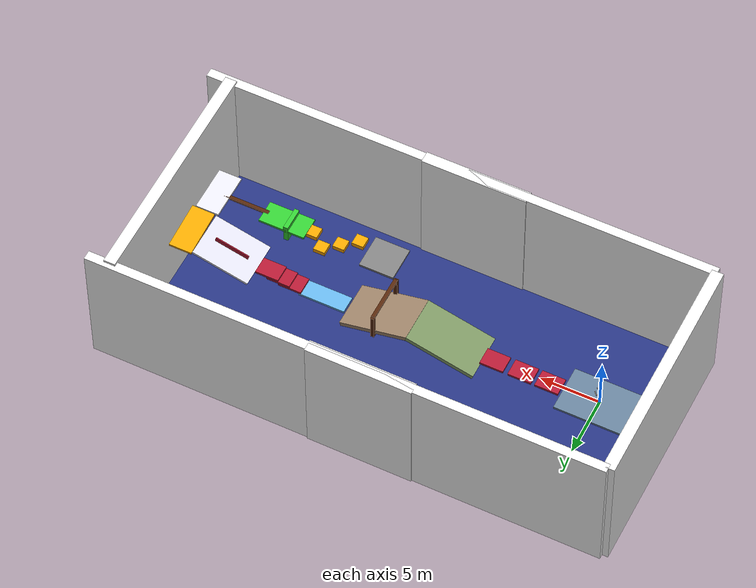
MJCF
<mujoco model="parkour-track">
    <compiler angle="degree" inertiafromgeom="true"/>
    <default>
        <joint armature="1" damping="1" limited="true"/>
        <geom conaffinity="1" condim="1" contype="1" margin="0.001" material="geom"/> <!-- rgba="0.8 0.6 .4 1" -->
        <motor ctrllimited="true" ctrlrange="-.4 .4"/>
    </default>
    <option integrator="RK4" iterations="50" solver="PGS" timestep="0.003" />
    <size nkey="5" nuser_geom="1"/>

    <asset>
        <texture type="skybox" builtin="gradient" rgb1=".4 .6 .8" rgb2="0 0 0" width="800" height="800"/>
        <texture name="grid" type="2d" builtin="checker" rgb1="0 0 0" rgb2="1 1 1" width="300" height="300"/>
        <material name="grid" texture="grid" texrepeat="1 1" texuniform="true" reflectance=".75"/>

        <texture name="shirt_texture" type="2d" file="./assets/shirtPattern.png"/>
        <material name="material_shirt" texture="shirt_texture" specular="0.3" shininess="0.5" texrepeat="0.5 0.5"/>

        <texture name="trunks_texture" type="2d" file="./assets/shorts.png"/>
        <material name="material_trunks" texture="trunks_texture" specular="0.3" shininess="0.5" texrepeat="2 2"/>

        <texture name="lucas_head_texture" type="2d" file="./assets/lucas.png"/>
        <material name="lucas_material" texture="lucas_head_texture" specular="0.3" shininess="0.5" texrepeat="1 1"/>

        <texture name="skin_texture" type="2d" file="./assets/skintone.png"/>
        <material name="material_skin" texture="skin_texture" specular="0.3" shininess="0.5" texrepeat="1 1"/>

        <texture name="SimulatedWood" type="cube" builtin="gradient" width="128" height="128" rgb1="0.6 0.4 0.2" rgb2="0.35 0.2 0.1"/>
        <material name="Wood" texture="SimulatedWood" texrepeat="5 5" emission="0.1" specular="0.2" shininess="0.3" rgba="0.7 0.5 0.3 1"/>

        <texture name="ConcreteTex" type="2d" builtin="flat" width="300" height="300" rgb1="0.4 0.4 0.4" rgb2="0.5 0.5 0.5" random="0.03"/>
        <material name="Concrete" texture="ConcreteTex" texrepeat="1 1" specular="0.1" shininess="0.1"/>

        <texture name="MetalTex" type="cube" builtin="flat" width="128" height="128" rgb1="0.9 0.9 0.95" rgb2="0.9 0.9 0.95"/>
        <material name="Metal" texture="MetalTex" specular="0.1" shininess="0.1" reflectance="0.1"/>

        <material name="geom" rgba="0.8 0.6 .4 1"/>
        <texture name="WallPanelTex" type="cube" builtin="checker" rgb1="1 1 1" rgb2="1 1 1" width="300" height="300" mark="edge" markrgb="0.1 0.1 0.1"/>
        <material name="WallPanelMat" texture="WallPanelTex" texrepeat="15 15" texuniform="true" specular="0.1" shininess="0.1" />
        <texture name="WallPanelTex2" type="2d" builtin="checker" rgb1="1 1 1" rgb2="1 1 1" width="300" height="300" mark="edge" markrgb="0.1 0.1 0.1"/>
        <material name="WallPanelMat2" texture="WallPanelTex2" texrepeat="1 1" texuniform="true" specular="0.1" shininess="0.1" />
        <texture name="PlatformTex" type="2d" builtin="checker" rgb1="0.15 0.2 0.5" rgb2="0.15 0.2 0.5" width="300" height="300" mark="edge" markrgb="1 1 1"/>
        <material name="PlatformMat" texture="PlatformTex" texrepeat="1 1" texuniform="true" specular="0.1" shininess="0.1" />
    </asset>

    <worldbody>
        <light pos="0 0 5" dir="0 0 -1" diffuse="1 1 1" specular="0.1 0.1 0.1" castshadow="true"/>

        <!-- Start Platform -->
        <geom name="platform_start" group="1" condim="3" friction="1 .1 .1" type="box" size="3 2 0.1" pos="0 0 -0.05" rgba="0.4 0.5 0.6 1" material="Concrete"/>

        <geom name="platform_jump_1" group="1" condim="3" type="box" size="1 0.75 0.1" pos="4.2 0 -0.1" rgba="0.7 0.1 0.2 1" friction="1 .1 .1"/>

        <geom name="platform_jump_2" group="1" condim="3" type="box" size="1 0.75 0.1" pos="6.5 0 -0.1" rgba="0.7 0.1 0.2 1" friction="1 .1 .1"/>

        <geom name="platform_jump_3" group="1" condim="3" type="box" size="1 0.75 0.1" pos="8.9 0 -0.1" rgba="0.7 0.1 0.2 1" friction="1 .1 .1"/>

        <!-- Gap 2 (Medium) -->
        <geom name="platform_incline" group="1" condim="3" type="box" size="3 2 0.2" pos="12.8 0 0.3" euler="0 -15 0" material="Concrete" rgba="0.5 0.6 0.4 1" friction="1 .1 .1"/>

        <!-- Gap 3 (Large with Z difference) -->
        <geom name="platform_decline" group="1" condim="3" type="box" size="3 2 0.2" pos="18.5 0 0.3" euler="0 15 0" rgba="0.6 0.5 0.4 1" friction="0.75 .1 .1"/>
        <geom name="duck_beam" type="box" size="0.15 2 0.1" pos="18.5 0 2.2" material="Wood"/>
        <geom name="beam_holder_1" type="box" size="0.15 0.15 1.2" pos="18.5 2 1" material="Wood"/>
        <geom name="beam_holder_2" type="box" size="0.15 0.15 1.2" pos="18.5 -2 1" material="Wood"/>

        <geom name="platform_landing" group="1" condim="3" type="box" size="2 0.75 0.1" pos="23.7 0 -0.7" rgba="0.4 0.7 0.9 1" friction="1 .1 .1"/>

        <geom name="platform_stair" group="1" condim="3" type="box" size="1 0.75 0.1" pos="26.5 0 -0.5" rgba="0.7 0.1 0.2 1" friction="1 .1 .1"/>

        <geom name="platform_stair_2" group="1" condim="3" type="box" size="1 0.75 0.1" pos="27.5 0 -0.3" rgba="0.7 0.1 0.2 1" friction="1 .1 .1"/>

        <geom name="platform_stair_3" group="1" condim="3" type="box" size="1 0.75 0.1" pos="28.5 0 -0.1" rgba="0.7 0.1 0.2 1" friction="1 .1 .1"/>

        <!-- Ramp and High Platform -->
        <geom name="ramp" type="box" group="1" condim="3" size="2.5 2 0.1" pos="32 0 0.4" euler="0 -15 0" material="Metal" friction="1 .1 .1"/> <!-- SLIPPERY?? -->
        <geom name="ramp_rail" type="box" size="1.5 0.05 0.5" pos="32 0 0.4" euler="0 -15 0" rgba="0.7 0.1 0.2 1"/>

        <geom name="high_platform" group="1" condim="3" type="box" size="2 2 0.1" pos="36.5 0 1" rgba="1 0.647 0 1" euler="-5 0 0" friction="1 .1 .1"/>
        <geom name="high_platform2" group="1" condim="3" type="box" size="2 2 0.1" pos="36.5 -4.5 0.5" material="Metal" friction="1 .1 .1"/>

        <!-- The Balance Beam -->
        <geom name="balance_beam" group="1" condim="3" type="box" size="2 0.15 0.1" pos="33 -4.5 0.5" material="Wood" friction="1 .1 .1"/>

        <!-- The Wall Vault -->
        <geom name="vault_wall_platform" group="1" condim="3" type="box" size="2 1 0.1" pos="29.4 -4.5 0.45" rgba="0.2 0.8 0.2 1" friction="1 .1 .1"/>
        <geom name="vault_wall" group="1" condim="3" type="box" size="0.2 1 0.8" pos="29 -4.5 0.15" rgba="0.2 0.8 0.2 1" friction="1 .1 .1"/>

        <!-- The Quad Jumps -->
        <geom name="jump_1" group="1" condim="3" type="box" size="0.5 0.5 0.2" pos="27 -4.5 0.3" rgba="1 0.647 0 1" friction="1 .1 .1"/>
        <geom name="jump_2" group="1" condim="3" type="box" size="0.5 0.5 0.2" pos="25.8 -3.5 0.2" rgba="1 0.647 0 1" friction="1 .1 .1"/>
        <geom name="jump_3" group="1" condim="3" type="box" size="0.5 0.5 0.2" pos="24.6 -4.5 0.1" rgba="1 0.647 0 1" friction="1 .1 .1"/>
        <geom name="jump_4" group="1" condim="3" type="box" size="0.5 0.5 0.2" pos="23.4 -5.5 0" rgba="1 0.647 0 1" friction="1 .1 .1"/>

        <!-- The Final Leap -->
        <geom name="finish_platform" group="1" condim="3" type="box" size="1.5 1.5 0.1" pos="21 -5 -0.1" material="grid" friction="1 .1 .1"/>

        <!-- ARENA BOX -->
        <geom name="bottom_floor" type="box" size="22 10 0.2" pos="17 0 -4" material="PlatformMat" />
        <geom name="wall_leftA" type="box" size="22 6 0.4" pos="17 -10 1.8" euler="90 0 0" material="WallPanelMat2" />
        <geom name="wall_left" type="box" size="4.5 0.5 6" pos="15.5 -10 1.8" material="WallPanelMat" />
        <geom name="wall_rightA" type="box" size="22 6 0.4" pos="17 10 1.8" euler="90 0 0" material="WallPanelMat2" />
        <geom name="wall_right" type="box" size="4.5 0.5 6" pos="15.5 10 1.8" material="WallPanelMat" />
        <geom name="wall_back" type="box" size="0.5 10 6" pos="-5 0 1.8" material="WallPanelMat" />
        <geom name="wall_front" type="box" size="0.5 10 6" pos="37 0 2" material="WallPanelMat" />

        <!-- Manually Expanded Ray visualization geoms -->
        <body name="ray_viz_parent" pos="0 0 0">
            <geom name="ray_viz_0" type="capsule" size="0.01 0.1" pos="0 0 -10" rgba="1 0 0 0.5" contype="0" conaffinity="0"/>
            <geom name="ray_viz_1" type="capsule" size="0.01 0.1" pos="0 0 -10" rgba="1 0 0 0.5" contype="0" conaffinity="0"/>
            <geom name="ray_viz_2" type="capsule" size="0.01 0.1" pos="0 0 -10" rgba="1 0 0 0.5" contype="0" conaffinity="0"/>
            <geom name="ray_viz_3" type="capsule" size="0.01 0.1" pos="0 0 -10" rgba="1 0 0 0.5" contype="0" conaffinity="0"/>
            <geom name="ray_viz_4" type="capsule" size="0.01 0.1" pos="0 0 -10" rgba="1 0 0 0.5" contype="0" conaffinity="0"/>
            <geom name="ray_viz_5" type="capsule" size="0.01 0.1" pos="0 0 -10" rgba="1 0 0 0.5" contype="0" conaffinity="0"/>
            <geom name="ray_viz_6" type="capsule" size="0.01 0.1" pos="0 0 -10" rgba="1 0 0 0.5" contype="0" conaffinity="0"/>
            <geom name="ray_viz_7" type="capsule" size="0.01 0.1" pos="0 0 -10" rgba="1 0 0 0.5" contype="0" conaffinity="0"/>
            <geom name="ray_viz_8" type="capsule" size="0.01 0.1" pos="0 0 -10" rgba="1 0 0 0.5" contype="0" conaffinity="0"/>
            <geom name="ray_viz_9" type="capsule" size="0.01 0.1" pos="0 0 -10" rgba="1 0 0 0.5" contype="0" conaffinity="0"/>
        </body>

        <site name="target_marker" type="sphere" size="0.15" rgba="0 1 1 0.7" />
        <site name="target_marker_next" type="sphere" size="0.15" rgba="0 1 1 0.3" />

        <body name="torso" pos="0 0 1.4">
            <camera name="side_view2" mode="trackcom" pos="1 -3 0.5" xyaxes="1 0 0 0 0.4 0.9"/>
            <camera name="chase_view_backward" mode="trackcom" pos="2.5 0 0.25" xyaxes="0 1 0 -0.342 0 0.940"/>
            <camera name="side_view1" mode="trackcom" pos="1 3 0.5" xyaxes="-1 0 0 0 -0.4 0.9"/>
            <camera name="third_person_follower" mode="trackcom" pos="-3 0 0.5" xyaxes="0 -1 0 0.342 0 0.940"/>
            <joint armature="0" damping="0" limited="false" name="root" pos="0 0 0" stiffness="0" type="free"/>
            <geom fromto="0 -.07 0 0 .07 0" name="torso1" size="0.07" type="capsule" material="material_shirt"/>
            <geom name="head" pos="0 0 .19" size=".09" type="sphere" material="lucas_material" quat="0.707 0 0.507 0" />
            <geom fromto="-.01 -.06 -.12 -.01 .06 -.12" name="uwaist" size="0.06" type="capsule" material="material_shirt"/>

            <body name="lwaist" pos="-.01 0 -0.260" quat="1.000 0 -0.002 0">
                <geom fromto="0 -.06 0 0 .06 0" name="lwaist" size="0.06" type="capsule" material="material_shirt"/>
                <joint armature="0.02" axis="0 0 1" damping="5" name="abdomen_z" pos="0 0 0.065" range="-45 45" stiffness="20" type="hinge"/>
                <joint armature="0.02" axis="0 1 0" damping="5" name="abdomen_y" pos="0 0 0.065" range="-75 30" stiffness="10" type="hinge"/>
                <body name="pelvis" pos="0 0 -0.165" quat="1.000 0 -0.002 0">
                    <joint armature="0.02" axis="1 0 0" damping="5" name="abdomen_x" pos="0 0 0.1" range="-35 35" stiffness="10" type="hinge"/>
                    <geom fromto="-.02 -.07 0 -.02 .07 0" name="butt" size="0.09" type="capsule" material="material_trunks"/>
                    <body name="right_thigh" pos="0 -0.1 -0.04">
                        <joint armature="0.01" axis="1 0 0" damping="5" name="right_hip_x" pos="0 0 0" range="-25 5" stiffness="10" type="hinge"/>
                        <joint armature="0.01" axis="0 0 1" damping="5" name="right_hip_z" pos="0 0 0" range="-60 35" stiffness="10" type="hinge"/>
                        <joint armature="0.0080" axis="0 1 0" damping="5" name="right_hip_y" pos="0 0 0" range="-110 20" stiffness="20" type="hinge"/>
                        <geom fromto="0 0 0 0 0.01 -.34" name="right_thigh1" size="0.06" type="capsule" material="material_skin"/>
                        <body name="right_shin" pos="0 0.01 -0.403">
                            <joint armature="0.0060" axis="0 -1 0" name="right_knee" pos="0 0 .02" range="-160 -2" type="hinge"/>
                            <geom fromto="0 0 0 0 0 -.3" name="right_shin1" size="0.049" type="capsule" material="material_skin"/>
                            <body name="right_foot" pos="0 0 -0.45">
                                <geom name="right_foot" pos="0 0 0.1" size="0.075" type="sphere" user="0" material="material_skin"/>
                            </body>
                        </body>
                    </body>
                    <body name="left_thigh" pos="0 0.1 -0.04">
                        <joint armature="0.01" axis="-1 0 0" damping="5" name="left_hip_x" pos="0 0 0" range="-25 5" stiffness="10" type="hinge"/>
                        <joint armature="0.01" axis="0 0 -1" damping="5" name="left_hip_z" pos="0 0 0" range="-60 35" stiffness="10" type="hinge"/>
                        <joint armature="0.01" axis="0 1 0" damping="5" name="left_hip_y" pos="0 0 0" range="-110 20" stiffness="20" type="hinge"/>
                        <geom fromto="0 0 0 0 -0.01 -.34" name="left_thigh1" size="0.06" type="capsule" material="material_skin"/>
                        <body name="left_shin" pos="0 -0.01 -0.403">
                            <joint armature="0.0060" axis="0 -1 0" name="left_knee" pos="0 0 .02" range="-160 -2" stiffness="1" type="hinge"/>
                            <geom fromto="0 0 0 0 0 -.3" name="left_shin1" size="0.049" type="capsule" material="material_skin"/>
                            <body name="left_foot" pos="0 0 -0.45">
                                <geom name="left_foot" type="sphere" size="0.075" pos="0 0 0.1" user="0" material="material_skin"/>
                            </body>
                        </body>
                    </body>
                </body>
            </body>
            <body name="right_upper_arm" pos="0 -0.17 0.06">
                <joint armature="0.0068" axis="2 1 1" name="right_shoulder1" pos="0 0 0" range="-85 60" stiffness="1" type="hinge"/>
                <joint armature="0.0051" axis="0 -1 1" name="right_shoulder2" pos="0 0 0" range="-85 60" stiffness="1" type="hinge"/>
                <geom fromto="0 0 0 .16 -.16 -.16" name="right_uarm1" size="0.04 0.16" type="capsule" material="material_skin"/>
                <body name="right_lower_arm" pos=".18 -.18 -.18">
                    <joint armature="0.0028" axis="0 -1 1" name="right_elbow" pos="0 0 0" range="-90 50" stiffness="0" type="hinge"/>
                    <geom fromto="0.01 0.01 0.01 .17 .17 .17" name="right_larm" size="0.031" type="capsule" material="material_skin"/>
                    <geom name="right_hand" pos=".18 .18 .18" size="0.04" type="sphere" material="material_skin"/>
                </body>
            </body>
            <body name="left_upper_arm" pos="0 0.17 0.06">
                <joint armature="0.0068" axis="2 -1 1" name="left_shoulder1" pos="0 0 0" range="-60 85" stiffness="1" type="hinge"/>
                <joint armature="0.0051" axis="0 1 1" name="left_shoulder2" pos="0 0 0" range="-60 85" stiffness="1" type="hinge"/>
                <geom fromto="0 0 0 .16 .16 -.16" name="left_uarm1" size="0.04 0.16" type="capsule" material="material_skin"/>
                <body name="left_lower_arm" pos=".18 .18 -.18">
                    <joint armature="0.0028" axis="0 -1 -1" name="left_elbow" pos="0 0 0" range="-90 50" stiffness="0" type="hinge"/>
                    <geom fromto="0.01 -0.01 0.01 .17 -.17 .17" name="left_larm" size="0.031" type="capsule" material="material_skin"/>
                    <geom name="left_hand" pos=".18 -.18 .18" size="0.04" type="sphere" material="material_skin"/>
                </body>
            </body>
        </body>
    </worldbody>
    <tendon>
        <fixed name="left_hipknee">
            <joint coef="-1" joint="left_hip_y"/>
            <joint coef="1" joint="left_knee"/>
        </fixed>
        <fixed name="right_hipknee">
            <joint coef="-1" joint="right_hip_y"/>
            <joint coef="1" joint="right_knee"/>
        </fixed>
    </tendon>

    <actuator>
        <motor gear="100" joint="abdomen_y" name="abdomen_y"/>
        <motor gear="100" joint="abdomen_z" name="abdomen_z"/>
        <motor gear="100" joint="abdomen_x" name="abdomen_x"/>
        <motor gear="100" joint="right_hip_x" name="right_hip_x"/>
        <motor gear="100" joint="right_hip_z" name="right_hip_z"/>
        <motor gear="300" joint="right_hip_y" name="right_hip_y"/>
        <motor gear="200" joint="right_knee" name="right_knee"/>
        <motor gear="100" joint="left_hip_x" name="left_hip_x"/>
        <motor gear="100" joint="left_hip_z" name="left_hip_z"/>
        <motor gear="300" joint="left_hip_y" name="left_hip_y"/>
        <motor gear="200" joint="left_knee" name="left_knee"/>
        <motor gear="25" joint="right_shoulder1" name="right_shoulder1"/>
        <motor gear="25" joint="right_shoulder2" name="right_shoulder2"/>
        <motor gear="25" joint="right_elbow" name="right_elbow"/>
        <motor gear="25" joint="left_shoulder1" name="left_shoulder1"/>
        <motor gear="25" joint="left_shoulder2" name="left_shoulder2"/>
        <motor gear="25" joint="left_elbow" name="left_elbow"/>
    </actuator>
</mujoco>
